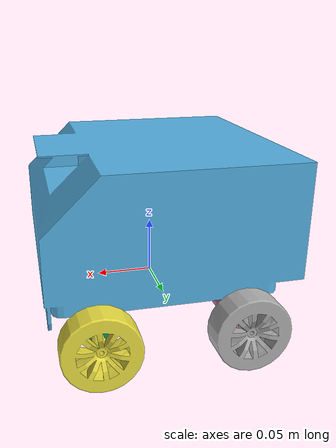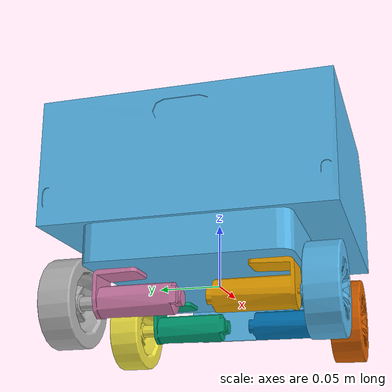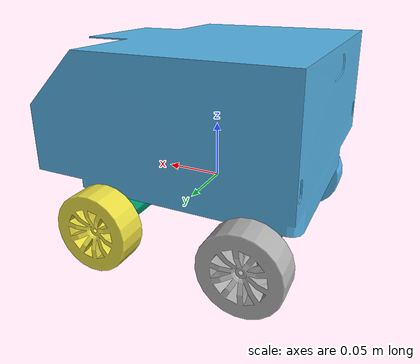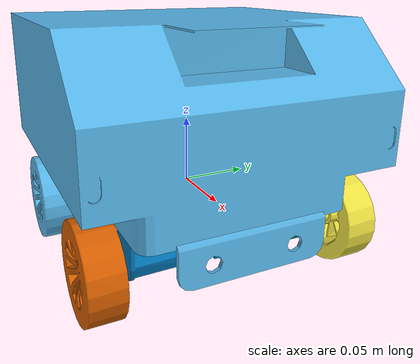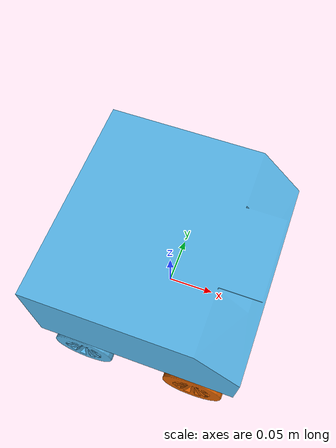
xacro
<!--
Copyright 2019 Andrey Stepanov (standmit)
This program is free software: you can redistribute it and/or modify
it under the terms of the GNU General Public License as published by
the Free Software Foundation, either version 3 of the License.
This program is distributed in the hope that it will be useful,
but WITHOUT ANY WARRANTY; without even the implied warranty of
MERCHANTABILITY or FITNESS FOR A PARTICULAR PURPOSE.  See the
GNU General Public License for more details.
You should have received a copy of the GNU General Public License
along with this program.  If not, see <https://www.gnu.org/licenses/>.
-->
<?xml version="1.0"?>

<robot name="vagrant" xmlns:xacro="http://www.ros.org/wiki/xacro">

    <xacro:include filename="$(find urdf_juggle)/inertials.urdf.xacro" />

    <link name="base_link" />

    <link name="body">
        <visual>
            <geometry>
                <mesh filename="file://$(find vagrant_description)/model/base.dae" />
            </geometry>
            <origin rpy="0.0 0.0 1.571" />
        </visual>
        <collision>
            <geometry>
                <box size="0.21 0.22 0.127" />
            </geometry>
            <origin xyz="0.002 0.0 0.064" />
        </collision>
        <collision>
            <geometry>
                <box size="0.004 0.11 0.03" />
            </geometry>
            <origin xyz="0.102 0.0 -0.014" />
        </collision>
        <inertial>
            <xacro:box_inertia mass="2.0" size="0.21 0.22 0.127" />
            <origin xyz="-0.002 0.0 0.064" />
        </inertial>
    </link>

    <joint name="base_to_body" type="fixed">
        <parent link="base_link" />
        <child link="body" />
    </joint>

    <xacro:include filename="$(find vagrant_description)/model/motor.urdf.xacro" />

    <xacro:macro name="robot_motor" params="name x y yaw">
        <xacro:wheel_motor name="${name}" base="base_link" xyz="${x} ${y} -0.022" rpy="0.0 0.0 ${yaw}" />
    </xacro:macro>

    <xacro:robot_motor name="left_front_motor" x="0.0635" y="0.095" yaw="1.571" />
    <xacro:robot_motor name="right_front_motor" x="0.0635" y="-0.095" yaw="-1.571" />
    <xacro:robot_motor name="left_back_motor" x="-0.0655" y="0.095" yaw="1.571" />
    <xacro:robot_motor name="right_back_motor" x="-0.0655" y="-0.095" yaw="-1.571" />

    <gazebo>
        <plugin name="gazebo_ros_control" filename="libgazebo_ros_control.so">
            <robotNamespace>$(arg robot_namespace)</robotNamespace>
            <robotSimType>gazebo_ros_control/DefaultRobotHWSim</robotSimType>
            <legacyModeNS>true</legacyModeNS>
        </plugin>
    </gazebo>

</robot>

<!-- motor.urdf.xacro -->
<robot xmlns:xacro="http://www.ros.org/wiki/xacro" name="motor">

    <xacro:include filename="$(find urdf_juggle)/inertials.urdf.xacro" />

    <xacro:macro name="wheel_motor" params="name base xyz rpy">

        <xacro:property name="stator_name" value="${name}_stator" />
        <xacro:property name="rotor_name" value="${name}_rotor" />
        <xacro:property name="joint_name" value="${name}_joint_base_to_rotor" />

        <link name="${stator_name}">
            <visual>
                <geometry>
                    <mesh filename="file://$(find vagrant_description)/model/wheel_motor_stator/wheel_motor_stator.dae" />
                </geometry>
                <origin xyz="-0.0205 0 0" />
            </visual>
            <collision>
                <geometry>
                    <box size="0.0645 0.026 0.024" />
                </geometry>
                <origin xyz="-0.0535 0.0005 0" />
            </collision>
            <collision>
                <geometry>
                    <box size="0.033 0.026 0.01" />
                </geometry>
                <origin xyz="-0.037 0 0.017"/>
            </collision>
            <inertial>
                <origin xyz="-0.048 0 0.003" />
                <xacro:box_inertia mass="0.1" size="0.064 0.024 0.03" />
            </inertial>
        </link>

        <joint name="${name}_base_to_stator" type="fixed">
           <parent link="${base}" />
           <child link="${stator_name}" />
           <origin xyz="${xyz}" rpy="${rpy}" />
        </joint>

        <link name="${rotor_name}">
            <visual>
                <geometry>
                    <mesh filename="file://$(find vagrant_description)/model/wheel_motor_rotor/wheel_motor_rotor.dae" />
                </geometry>
            </visual>
            <collision>
                <geometry>
                    <cylinder radius="0.0337" length="0.025" />
                </geometry>
                <origin xyz="-0.0002 0 0" rpy="0 1.571 0" />
            </collision>
            <collision>
                <geometry>
                    <cylinder radius="0.0055" length="0.0072" />
                </geometry>
                <origin xyz="-0.0165 0 0" rpy="0 1.571 0" />
            </collision>
            <inertial>
                <xacro:cylinder_inertia mass="0.05" radius="0.032" length="0.028" />
                <origin rpy="0 1.571 0" />
            </inertial>
        </link>

        <gazebo reference="${rotor_name}">
            <mu1>0.8</mu1>
            <mu2>0.8</mu2>
            <kp>8.0e+3</kp>
            <kd>100.0</kd>
        </gazebo>

        <joint name="${joint_name}" type="continuous">
            <parent link="${base}" />
            <child link="${rotor_name}" />
            <dynamics friction="0.031" />
            <origin xyz="${xyz}" rpy="${rpy}" />
        </joint>

        <transmission name="${name}_rotor_transmission">
            <type>transmission_interface/SimpleTransmission</type>
            <joint name="${joint_name}">
                <hardwareInterface>hardware_interface/VelocityJointInterface</hardwareInterface>
            </joint>
            <actuator name="${name}_motor">
                <hardwareInterface>hardware_interface/VelocityJointInterface</hardwareInterface>
                <mechanicalReduction>1</mechanicalReduction>
            </actuator>
        </transmission>

    </xacro:macro>

</robot>
